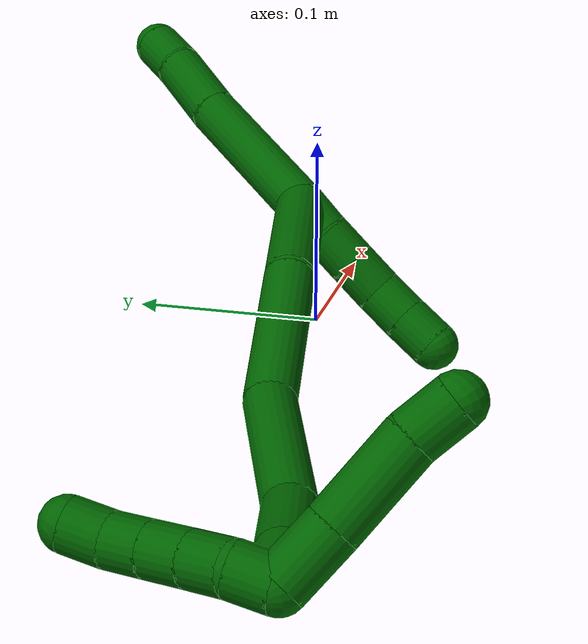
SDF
<sdf version="1.7">
 <world name="default">
  <model name="photoneo_s_sensor">
   <static>1</static>
   <pose>0 0 2 1.57079 1.57079 3.14159</pose>
   <link name="link">
    <inertial><mass>0.1</mass></inertial>
    <sensor name="sensor" type="depth">
     <update_rate>30</update_rate>
     <camera>
      <horizontal_fov>1.22</horizontal_fov>
      <image><width>1920</width><height>1200</height><format>B8G8R8</format></image>
      <clip><near>0.1</near><far>4</far></clip>
      <depth_camera><output>points</output></depth_camera>
     </camera>
     <plugin name="camera_plugin" filename="libgazebo_ros_depth_camera.so">
      <baseline>0.2</baseline>
      <alwaysOn>1</alwaysOn>
      <updateRate>0.0</updateRate>
      <cameraName>camera_ir</cameraName>
      <imageTopicName>/camera/color/image_raw</imageTopicName>
      <cameraInfoTopicName>/camera/color/camera_info</cameraInfoTopicName>
      <depthImageTopicName>/camera/depth/image_raw</depthImageTopicName>
      <depthImageCameraInfoTopicName>/camera/depth/camera_info</depthImageCameraInfoTopicName>
      <pointCloudTopicName>/camera/depth/points</pointCloudTopicName>
      <frameName>fr_optical</frameName>
      <pointCloudCutoff>0.1</pointCloudCutoff>
      <pointCloudCutoffMax>2.0</pointCloudCutoffMax>
      <distortionK1>0</distortionK1>
      <distortionK2>0</distortionK2>
      <distortionK3>0</distortionK3>
      <distortionT1>0</distortionT1>
      <distortionT2>0</distortionT2>
      <CxPrime>0</CxPrime>
      <Cx>0</Cx>
      <Cy>0</Cy>
      <focalLength>0</focalLength>
      <hackBaseline>0</hackBaseline>
     </plugin>
    </sensor>
   </link>
  </model>
  <model name="bin">
   <static>1</static>
   <link name="bottom">
    <collision name="collision-bottom">
     <pose>0 0 -0.01 0 -0 0</pose>
     <geometry><box><size>0.8 0.6 0.02</size></box></geometry>
     <surface>
      <friction><ode><mu>100</mu><mu2>100</mu2></ode></friction>
      <contact><collide_bitmask>65535</collide_bitmask></contact>
     </surface>
    </collision>
   </link>
   <link name="west_wall">
    <collision name="collision-west_wall">
     <pose>-0.41 0 0.1 0 -0 0</pose>
     <geometry><box><size>0.02 0.6 0.2</size></box></geometry>
     <surface>
      <friction><ode><mu>100</mu><mu2>100</mu2></ode></friction>
      <contact><collide_bitmask>65535</collide_bitmask></contact>
     </surface>
    </collision>
   </link>
   <link name="east_wall">
    <collision name="collision-east_wall">
     <pose>0.41 0 0.1 0 -0 0</pose>
     <geometry><box><size>0.02 0.6 0.2</size></box></geometry>
     <surface>
      <friction><ode><mu>100</mu><mu2>100</mu2></ode></friction>
      <contact><collide_bitmask>65535</collide_bitmask></contact>
     </surface>
    </collision>
   </link>
   <link name="south_wall">
    <collision name="collision-south_wall">
     <pose>0 -0.31 0.1 0 -0 0</pose>
     <geometry><box><size>0.8 0.02 0.2</size></box></geometry>
     <surface>
      <friction><ode><mu>100</mu><mu2>100</mu2></ode></friction>
      <contact><collide_bitmask>65535</collide_bitmask></contact>
     </surface>
    </collision>
   </link>
   <link name="north_wall">
    <collision name="collision-north_wall">
     <pose>0 0.31 0.1 0 -0 0</pose>
     <geometry><box><size>0.8 0.02 0.2</size></box></geometry>
     <surface>
      <friction><ode><mu>100</mu><mu2>100</mu2></ode></friction>
      <contact><collide_bitmask>65535</collide_bitmask></contact>
     </surface>
    </collision>
   </link>
  </model>
  <model name="6">
   <static>0</static>
   <link name="6">
    <collision name="collision-cylinder-e_1_2_8">
     <pose>0.036665 -0.018531 -0.006592 1.91257 1.07843 1.4066</pose>
     <geometry><cylinder><radius>0.0125</radius><length>0.083215</length></cylinder></geometry>
     <surface>
      <friction><ode><mu>1.16</mu><mu2>1.16</mu2><slip1>0</slip1><slip2>0</slip2></ode></friction>
      <contact><ode><kp>1e+06</kp><kd>1</kd><max_vel>0</max_vel><min_depth>0.001</min_depth></ode></contact>
     </surface>
    </collision>
    <visual name="visual-cylinder-e_1_2_8">
     <pose>0.036665 -0.018531 -0.006592 1.91257 1.07843 1.4066</pose>
     <geometry><cylinder><radius>0.0125</radius><length>0.083215</length></cylinder></geometry>
     <material><ambient>0 0.392157 0.003922 1</ambient></material>
    </visual>
    <collision name="collision-cylinder-e_2_8_9">
     <pose>0.090872 -0.046047 -0.017977 2.06087 1.04482 1.52971</pose>
     <geometry><cylinder><radius>0.0125</radius><length>0.040566</length></cylinder></geometry>
     <surface>
      <friction><ode><mu>1.16</mu><mu2>1.16</mu2><slip1>0</slip1><slip2>0</slip2></ode></friction>
      <contact><ode><kp>1e+06</kp><kd>1</kd><max_vel>0</max_vel><min_depth>0.001</min_depth></ode></contact>
     </surface>
    </collision>
    <visual name="visual-cylinder-e_2_8_9">
     <pose>0.090872 -0.046047 -0.017977 2.06087 1.04482 1.52971</pose>
     <geometry><cylinder><radius>0.0125</radius><length>0.040566</length></cylinder></geometry>
     <material><ambient>0 0.392157 0.003922 1</ambient></material>
    </visual>
    <collision name="collision-cylinder-e_3_9_6">
     <pose>0.120449 -0.058986 -0.02614 2.27652 1.16324 1.91718</pose>
     <geometry><cylinder><radius>0.0125</radius><length>0.026218</length></cylinder></geometry>
     <surface>
      <friction><ode><mu>1.16</mu><mu2>1.16</mu2><slip1>0</slip1><slip2>0</slip2></ode></friction>
      <contact><ode><kp>1e+06</kp><kd>1</kd><max_vel>0</max_vel><min_depth>0.001</min_depth></ode></contact>
     </surface>
    </collision>
    <visual name="visual-cylinder-e_3_9_6">
     <pose>0.120449 -0.058986 -0.02614 2.27652 1.16324 1.91718</pose>
     <geometry><cylinder><radius>0.0125</radius><length>0.026218</length></cylinder></geometry>
     <material><ambient>0 0.392157 0.003922 1</ambient></material>
    </visual>
    <collision name="collision-cylinder-e_1_2_10">
     <pose>-0.006757 0.007341 -0.000672 -1.66207 -0.741978 0.805828</pose>
     <geometry><cylinder><radius>0.0125</radius><length>0.02</length></cylinder></geometry>
     <surface>
      <friction><ode><mu>1.16</mu><mu2>1.16</mu2><slip1>0</slip1><slip2>0</slip2></ode></friction>
      <contact><ode><kp>1e+06</kp><kd>1</kd><max_vel>0</max_vel><min_depth>0.001</min_depth></ode></contact>
     </surface>
    </collision>
    <visual name="visual-cylinder-e_1_2_10">
     <pose>-0.006757 0.007341 -0.000672 -1.66207 -0.741978 0.805828</pose>
     <geometry><cylinder><radius>0.0125</radius><length>0.02</length></cylinder></geometry>
     <material><ambient>0 0.392157 0.003922 1</ambient></material>
    </visual>
    <collision name="collision-cylinder-e_2_10_11">
     <pose>-0.019438 0.022484 -0.003355 -1.82307 -0.633864 0.800779</pose>
     <geometry><cylinder><radius>0.0125</radius><length>0.02</length></cylinder></geometry>
     <surface>
      <friction><ode><mu>1.16</mu><mu2>1.16</mu2><slip1>0</slip1><slip2>0</slip2></ode></friction>
      <contact><ode><kp>1e+06</kp><kd>1</kd><max_vel>0</max_vel><min_depth>0.001</min_depth></ode></contact>
     </surface>
    </collision>
    <visual name="visual-cylinder-e_2_10_11">
     <pose>-0.019438 0.022484 -0.003355 -1.82307 -0.633864 0.800779</pose>
     <geometry><cylinder><radius>0.0125</radius><length>0.02</length></cylinder></geometry>
     <material><ambient>0 0.392157 0.003922 1</ambient></material>
    </visual>
    <collision name="collision-cylinder-e_3_11_12">
     <pose>-0.031153 0.038143 -0.007537 -1.8404 -0.617816 0.794006</pose>
     <geometry><cylinder><radius>0.0125</radius><length>0.02</length></cylinder></geometry>
     <surface>
      <friction><ode><mu>1.16</mu><mu2>1.16</mu2><slip1>0</slip1><slip2>0</slip2></ode></friction>
      <contact><ode><kp>1e+06</kp><kd>1</kd><max_vel>0</max_vel><min_depth>0.001</min_depth></ode></contact>
     </surface>
    </collision>
    <visual name="visual-cylinder-e_3_11_12">
     <pose>-0.031153 0.038143 -0.007537 -1.8404 -0.617816 0.794006</pose>
     <geometry><cylinder><radius>0.0125</radius><length>0.02</length></cylinder></geometry>
     <material><ambient>0 0.392157 0.003922 1</ambient></material>
    </visual>
    <collision name="collision-cylinder-e_4_12_13">
     <pose>-0.044367 0.052631 -0.010681 -1.71645 -0.836339 0.950079</pose>
     <geometry><cylinder><radius>0.0125</radius><length>0.02</length></cylinder></geometry>
     <surface>
      <friction><ode><mu>1.16</mu><mu2>1.16</mu2><slip1>0</slip1><slip2>0</slip2></ode></friction>
      <contact><ode><kp>1e+06</kp><kd>1</kd><max_vel>0</max_vel><min_depth>0.001</min_depth></ode></contact>
     </surface>
    </collision>
    <visual name="visual-cylinder-e_4_12_13">
     <pose>-0.044367 0.052631 -0.010681 -1.71645 -0.836339 0.950079</pose>
     <geometry><cylinder><radius>0.0125</radius><length>0.02</length></cylinder></geometry>
     <material><ambient>0 0.392157 0.003922 1</ambient></material>
    </visual>
    <collision name="collision-cylinder-e_5_13_5">
     <pose>-0.059423 0.065639 -0.012684 -1.73094 -0.868528 0.997557</pose>
     <geometry><cylinder><radius>0.0125</radius><length>0.02</length></cylinder></geometry>
     <surface>
      <friction><ode><mu>1.16</mu><mu2>1.16</mu2><slip1>0</slip1><slip2>0</slip2></ode></friction>
      <contact><ode><kp>1e+06</kp><kd>1</kd><max_vel>0</max_vel><min_depth>0.001</min_depth></ode></contact>
     </surface>
    </collision>
    <visual name="visual-cylinder-e_5_13_5">
     <pose>-0.059423 0.065639 -0.012684 -1.73094 -0.868528 0.997557</pose>
     <geometry><cylinder><radius>0.0125</radius><length>0.02</length></cylinder></geometry>
     <material><ambient>0 0.392157 0.003922 1</ambient></material>
    </visual>
    <collision name="collision-cylinder-e_1_2_14">
     <pose>-0.024844 0.003839 0.028201 -0.135309 -0.717642 0.050815</pose>
     <geometry><cylinder><radius>0.0125</radius><length>0.075559</length></cylinder></geometry>
     <surface>
      <friction><ode><mu>1.16</mu><mu2>1.16</mu2><slip1>0</slip1><slip2>0</slip2></ode></friction>
      <contact><ode><kp>1e+06</kp><kd>1</kd><max_vel>0</max_vel><min_depth>0.001</min_depth></ode></contact>
     </surface>
    </collision>
    <visual name="visual-cylinder-e_1_2_14">
     <pose>-0.024844 0.003839 0.028201 -0.135309 -0.717642 0.050815</pose>
     <geometry><cylinder><radius>0.0125</radius><length>0.075559</length></cylinder></geometry>
     <material><ambient>0 0.392157 0.003922 1</ambient></material>
    </visual>
    <collision name="collision-cylinder-e_2_14_15">
     <pose>-0.072092 0.021463 0.087009 -0.423161 -0.588543 0.130013</pose>
     <geometry><cylinder><radius>0.0125</radius><length>0.080714</length></cylinder></geometry>
     <surface>
      <friction><ode><mu>1.16</mu><mu2>1.16</mu2><slip1>0</slip1><slip2>0</slip2></ode></friction>
      <contact><ode><kp>1e+06</kp><kd>1</kd><max_vel>0</max_vel><min_depth>0.001</min_depth></ode></contact>
     </surface>
    </collision>
    <visual name="visual-cylinder-e_2_14_15">
     <pose>-0.072092 0.021463 0.087009 -0.423161 -0.588543 0.130013</pose>
     <geometry><cylinder><radius>0.0125</radius><length>0.080714</length></cylinder></geometry>
     <material><ambient>0 0.392157 0.003922 1</ambient></material>
    </visual>
    <collision name="collision-cylinder-e_3_15_16">
     <pose>-0.123504 0.042468 0.140247 -0.308843 -0.884599 0.147173</pose>
     <geometry><cylinder><radius>0.0125</radius><length>0.074988</length></cylinder></geometry>
     <surface>
      <friction><ode><mu>1.16</mu><mu2>1.16</mu2><slip1>0</slip1><slip2>0</slip2></ode></friction>
      <contact><ode><kp>1e+06</kp><kd>1</kd><max_vel>0</max_vel><min_depth>0.001</min_depth></ode></contact>
     </surface>
    </collision>
    <visual name="visual-cylinder-e_3_15_16">
     <pose>-0.123504 0.042468 0.140247 -0.308843 -0.884599 0.147173</pose>
     <geometry><cylinder><radius>0.0125</radius><length>0.074988</length></cylinder></geometry>
     <material><ambient>0 0.392157 0.003922 1</ambient></material>
    </visual>
    <collision name="collision-cylinder-e_4_16_17">
     <pose>-0.167055 0.048081 0.178069 0.105446 -0.76087 -0.042203</pose>
     <geometry><cylinder><radius>0.0125</radius><length>0.042181</length></cylinder></geometry>
     <surface>
      <friction><ode><mu>1.16</mu><mu2>1.16</mu2><slip1>0</slip1><slip2>0</slip2></ode></friction>
      <contact><ode><kp>1e+06</kp><kd>1</kd><max_vel>0</max_vel><min_depth>0.001</min_depth></ode></contact>
     </surface>
    </collision>
    <visual name="visual-cylinder-e_4_16_17">
     <pose>-0.167055 0.048081 0.178069 0.105446 -0.76087 -0.042203</pose>
     <geometry><cylinder><radius>0.0125</radius><length>0.042181</length></cylinder></geometry>
     <material><ambient>0 0.392157 0.003922 1</ambient></material>
    </visual>
    <collision name="collision-cylinder-e_5_17_1">
     <pose>-0.190785 0.045345 0.20278 0.117935 -0.76404 -0.047427</pose>
     <geometry><cylinder><radius>0.0125</radius><length>0.026559</length></cylinder></geometry>
     <surface>
      <friction><ode><mu>1.16</mu><mu2>1.16</mu2><slip1>0</slip1><slip2>0</slip2></ode></friction>
      <contact><ode><kp>1e+06</kp><kd>1</kd><max_vel>0</max_vel><min_depth>0.001</min_depth></ode></contact>
     </surface>
    </collision>
    <visual name="visual-cylinder-e_5_17_1">
     <pose>-0.190785 0.045345 0.20278 0.117935 -0.76404 -0.047427</pose>
     <geometry><cylinder><radius>0.0125</radius><length>0.026559</length></cylinder></geometry>
     <material><ambient>0 0.392157 0.003922 1</ambient></material>
    </visual>
    <collision name="collision-cylinder-e_1_1_18">
     <pose>-0.191108 0.041422 0.215993 0.648169 1.08941 0.401556</pose>
     <geometry><cylinder><radius>0.0125</radius><length>0.02</length></cylinder></geometry>
     <surface>
      <friction><ode><mu>1.16</mu><mu2>1.16</mu2><slip1>0</slip1><slip2>0</slip2></ode></friction>
      <contact><ode><kp>1e+06</kp><kd>1</kd><max_vel>0</max_vel><min_depth>0.001</min_depth></ode></contact>
     </surface>
    </collision>
    <visual name="visual-cylinder-e_1_1_18">
     <pose>-0.191108 0.041422 0.215993 0.648169 1.08941 0.401556</pose>
     <geometry><cylinder><radius>0.0125</radius><length>0.02</length></cylinder></geometry>
     <material><ambient>0 0.392157 0.003922 1</ambient></material>
    </visual>
    <collision name="collision-cylinder-e_2_18_19">
     <pose>-0.172483 0.038428 0.221842 0.091716 1.35236 0.073608</pose>
     <geometry><cylinder><radius>0.0125</radius><length>0.02</length></cylinder></geometry>
     <surface>
      <friction><ode><mu>1.16</mu><mu2>1.16</mu2><slip1>0</slip1><slip2>0</slip2></ode></friction>
      <contact><ode><kp>1e+06</kp><kd>1</kd><max_vel>0</max_vel><min_depth>0.001</min_depth></ode></contact>
     </surface>
    </collision>
    <visual name="visual-cylinder-e_2_18_19">
     <pose>-0.172483 0.038428 0.221842 0.091716 1.35236 0.073608</pose>
     <geometry><cylinder><radius>0.0125</radius><length>0.02</length></cylinder></geometry>
     <material><ambient>0 0.392157 0.003922 1</ambient></material>
    </visual>
    <collision name="collision-cylinder-e_3_19_20">
     <pose>-0.153076 0.037748 0.226599 0.183189 1.30326 0.139896</pose>
     <geometry><cylinder><radius>0.0125</radius><length>0.02</length></cylinder></geometry>
     <surface>
      <friction><ode><mu>1.16</mu><mu2>1.16</mu2><slip1>0</slip1><slip2>0</slip2></ode></friction>
      <contact><ode><kp>1e+06</kp><kd>1</kd><max_vel>0</max_vel><min_depth>0.001</min_depth></ode></contact>
     </surface>
    </collision>
    <visual name="visual-cylinder-e_3_19_20">
     <pose>-0.153076 0.037748 0.226599 0.183189 1.30326 0.139896</pose>
     <geometry><cylinder><radius>0.0125</radius><length>0.02</length></cylinder></geometry>
     <material><ambient>0 0.392157 0.003922 1</ambient></material>
    </visual>
    <collision name="collision-cylinder-e_4_20_21">
     <pose>-0.133798 0.036718 0.231824 0.205778 1.29921 0.156539</pose>
     <geometry><cylinder><radius>0.0125</radius><length>0.02</length></cylinder></geometry>
     <surface>
      <friction><ode><mu>1.16</mu><mu2>1.16</mu2><slip1>0</slip1><slip2>0</slip2></ode></friction>
      <contact><ode><kp>1e+06</kp><kd>1</kd><max_vel>0</max_vel><min_depth>0.001</min_depth></ode></contact>
     </surface>
    </collision>
    <visual name="visual-cylinder-e_4_20_21">
     <pose>-0.133798 0.036718 0.231824 0.205778 1.29921 0.156539</pose>
     <geometry><cylinder><radius>0.0125</radius><length>0.02</length></cylinder></geometry>
     <material><ambient>0 0.392157 0.003922 1</ambient></material>
    </visual>
    <collision name="collision-cylinder-e_5_21_4">
     <pose>-0.115472 0.033073 0.238302 0.677275 1.05382 0.404212</pose>
     <geometry><cylinder><radius>0.0125</radius><length>0.02</length></cylinder></geometry>
     <surface>
      <friction><ode><mu>1.16</mu><mu2>1.16</mu2><slip1>0</slip1><slip2>0</slip2></ode></friction>
      <contact><ode><kp>1e+06</kp><kd>1</kd><max_vel>0</max_vel><min_depth>0.001</min_depth></ode></contact>
     </surface>
    </collision>
    <visual name="visual-cylinder-e_5_21_4">
     <pose>-0.115472 0.033073 0.238302 0.677275 1.05382 0.404212</pose>
     <geometry><cylinder><radius>0.0125</radius><length>0.02</length></cylinder></geometry>
     <material><ambient>0 0.392157 0.003922 1</ambient></material>
    </visual>
    <collision name="collision-cylinder-e_1_1_22">
     <pose>-0.203882 0.036678 0.199714 2.60195 -0.260454 -0.884537</pose>
     <geometry><cylinder><radius>0.0125</radius><length>0.030369</length></cylinder></geometry>
     <surface>
      <friction><ode><mu>1.16</mu><mu2>1.16</mu2><slip1>0</slip1><slip2>0</slip2></ode></friction>
      <contact><ode><kp>1e+06</kp><kd>1</kd><max_vel>0</max_vel><min_depth>0.001</min_depth></ode></contact>
     </surface>
    </collision>
    <visual name="visual-cylinder-e_1_1_22">
     <pose>-0.203882 0.036678 0.199714 2.60195 -0.260454 -0.884537</pose>
     <geometry><cylinder><radius>0.0125</radius><length>0.030369</length></cylinder></geometry>
     <material><ambient>0 0.392157 0.003922 1</ambient></material>
    </visual>
    <collision name="collision-cylinder-e_2_22_23">
     <pose>-0.214322 0.016465 0.168916 2.5336 -0.286202 -0.861091</pose>
     <geometry><cylinder><radius>0.0125</radius><length>0.046254</length></cylinder></geometry>
     <surface>
      <friction><ode><mu>1.16</mu><mu2>1.16</mu2><slip1>0</slip1><slip2>0</slip2></ode></friction>
      <contact><ode><kp>1e+06</kp><kd>1</kd><max_vel>0</max_vel><min_depth>0.001</min_depth></ode></contact>
     </surface>
    </collision>
    <visual name="visual-cylinder-e_2_22_23">
     <pose>-0.214322 0.016465 0.168916 2.5336 -0.286202 -0.861091</pose>
     <geometry><cylinder><radius>0.0125</radius><length>0.046254</length></cylinder></geometry>
     <material><ambient>0 0.392157 0.003922 1</ambient></material>
    </visual>
    <collision name="collision-cylinder-e_3_23_3">
     <pose>-0.2263 -0.001646 0.141911 2.58783 -0.484964 -1.43244</pose>
     <geometry><cylinder><radius>0.0125</radius><length>0.023376</length></cylinder></geometry>
     <surface>
      <friction><ode><mu>1.16</mu><mu2>1.16</mu2><slip1>0</slip1><slip2>0</slip2></ode></friction>
      <contact><ode><kp>1e+06</kp><kd>1</kd><max_vel>0</max_vel><min_depth>0.001</min_depth></ode></contact>
     </surface>
    </collision>
    <visual name="visual-cylinder-e_3_23_3">
     <pose>-0.2263 -0.001646 0.141911 2.58783 -0.484964 -1.43244</pose>
     <geometry><cylinder><radius>0.0125</radius><length>0.023376</length></cylinder></geometry>
     <material><ambient>0 0.392157 0.003922 1</ambient></material>
    </visual>
    <collision name="collision-sphere-3">
     <pose>-0.231748 -0.007084 0.133116 0 -0 0</pose>
     <geometry><sphere><radius>0.0125</radius></sphere></geometry>
     <surface>
      <friction><ode><mu>1.16</mu><mu2>1.16</mu2><slip1>0</slip1><slip2>0</slip2></ode></friction>
      <contact><ode><kp>1e+06</kp><kd>1</kd><max_vel>0</max_vel><min_depth>0.001</min_depth></ode></contact>
     </surface>
    </collision>
    <visual name="visual-sphere-3">
     <pose>-0.231748 -0.007084 0.133116 0 -0 0</pose>
     <geometry><sphere><radius>0.0125</radius></sphere></geometry>
     <material><ambient>0 0.392157 0.003922 1</ambient></material>
    </visual>
    <collision name="collision-sphere-23">
     <pose>-0.220851 0.003792 0.150706 0 -0 0</pose>
     <geometry><sphere><radius>0.0125</radius></sphere></geometry>
     <surface>
      <friction><ode><mu>1.16</mu><mu2>1.16</mu2><slip1>0</slip1><slip2>0</slip2></ode></friction>
      <contact><ode><kp>1e+06</kp><kd>1</kd><max_vel>0</max_vel><min_depth>0.001</min_depth></ode></contact>
     </surface>
    </collision>
    <visual name="visual-sphere-23">
     <pose>-0.220851 0.003792 0.150706 0 -0 0</pose>
     <geometry><sphere><radius>0.0125</radius></sphere></geometry>
     <material><ambient>0 0.392157 0.003922 1</ambient></material>
    </visual>
    <collision name="collision-sphere-22">
     <pose>-0.207793 0.029139 0.187127 0 -0 0</pose>
     <geometry><sphere><radius>0.0125</radius></sphere></geometry>
     <surface>
      <friction><ode><mu>1.16</mu><mu2>1.16</mu2><slip1>0</slip1><slip2>0</slip2></ode></friction>
      <contact><ode><kp>1e+06</kp><kd>1</kd><max_vel>0</max_vel><min_depth>0.001</min_depth></ode></contact>
     </surface>
    </collision>
    <visual name="visual-sphere-22">
     <pose>-0.207793 0.029139 0.187127 0 -0 0</pose>
     <geometry><sphere><radius>0.0125</radius></sphere></geometry>
     <material><ambient>0 0.392157 0.003922 1</ambient></material>
    </visual>
    <collision name="collision-sphere-4">
     <pose>-0.106778 0.029975 0.242154 0 -0 0</pose>
     <geometry><sphere><radius>0.0125</radius></sphere></geometry>
     <surface>
      <friction><ode><mu>1.16</mu><mu2>1.16</mu2><slip1>0</slip1><slip2>0</slip2></ode></friction>
      <contact><ode><kp>1e+06</kp><kd>1</kd><max_vel>0</max_vel><min_depth>0.001</min_depth></ode></contact>
     </surface>
    </collision>
    <visual name="visual-sphere-4">
     <pose>-0.106778 0.029975 0.242154 0 -0 0</pose>
     <geometry><sphere><radius>0.0125</radius></sphere></geometry>
     <material><ambient>0 0.392157 0.003922 1</ambient></material>
    </visual>
    <collision name="collision-sphere-21">
     <pose>-0.124165 0.03617 0.23445 0 -0 0</pose>
     <geometry><sphere><radius>0.0125</radius></sphere></geometry>
     <surface>
      <friction><ode><mu>1.16</mu><mu2>1.16</mu2><slip1>0</slip1><slip2>0</slip2></ode></friction>
      <contact><ode><kp>1e+06</kp><kd>1</kd><max_vel>0</max_vel><min_depth>0.001</min_depth></ode></contact>
     </surface>
    </collision>
    <visual name="visual-sphere-21">
     <pose>-0.124165 0.03617 0.23445 0 -0 0</pose>
     <geometry><sphere><radius>0.0125</radius></sphere></geometry>
     <material><ambient>0 0.392157 0.003922 1</ambient></material>
    </visual>
    <collision name="collision-sphere-20">
     <pose>-0.143432 0.037266 0.229198 0 -0 0</pose>
     <geometry><sphere><radius>0.0125</radius></sphere></geometry>
     <surface>
      <friction><ode><mu>1.16</mu><mu2>1.16</mu2><slip1>0</slip1><slip2>0</slip2></ode></friction>
      <contact><ode><kp>1e+06</kp><kd>1</kd><max_vel>0</max_vel><min_depth>0.001</min_depth></ode></contact>
     </surface>
    </collision>
    <visual name="visual-sphere-20">
     <pose>-0.143432 0.037266 0.229198 0 -0 0</pose>
     <geometry><sphere><radius>0.0125</radius></sphere></geometry>
     <material><ambient>0 0.392157 0.003922 1</ambient></material>
    </visual>
    <collision name="collision-sphere-11">
     <pose>-0.02536 0.030286 -0.005366 0 -0 0</pose>
     <geometry><sphere><radius>0.0125</radius></sphere></geometry>
     <surface>
      <friction><ode><mu>1.16</mu><mu2>1.16</mu2><slip1>0</slip1><slip2>0</slip2></ode></friction>
      <contact><ode><kp>1e+06</kp><kd>1</kd><max_vel>0</max_vel><min_depth>0.001</min_depth></ode></contact>
     </surface>
    </collision>
    <visual name="visual-sphere-11">
     <pose>-0.02536 0.030286 -0.005366 0 -0 0</pose>
     <geometry><sphere><radius>0.0125</radius></sphere></geometry>
     <material><ambient>0 0.392157 0.003922 1</ambient></material>
    </visual>
    <collision name="collision-sphere-10">
     <pose>-0.013515 0.014681 -0.001344 0 -0 0</pose>
     <geometry><sphere><radius>0.0125</radius></sphere></geometry>
     <surface>
      <friction><ode><mu>1.16</mu><mu2>1.16</mu2><slip1>0</slip1><slip2>0</slip2></ode></friction>
      <contact><ode><kp>1e+06</kp><kd>1</kd><max_vel>0</max_vel><min_depth>0.001</min_depth></ode></contact>
     </surface>
    </collision>
    <visual name="visual-sphere-10">
     <pose>-0.013515 0.014681 -0.001344 0 -0 0</pose>
     <geometry><sphere><radius>0.0125</radius></sphere></geometry>
     <material><ambient>0 0.392157 0.003922 1</ambient></material>
    </visual>
    <collision name="collision-sphere-6">
     <pose>0.132485 -0.062941 -0.029511 0 -0 0</pose>
     <geometry><sphere><radius>0.0125</radius></sphere></geometry>
     <surface>
      <friction><ode><mu>1.16</mu><mu2>1.16</mu2><slip1>0</slip1><slip2>0</slip2></ode></friction>
      <contact><ode><kp>1e+06</kp><kd>1</kd><max_vel>0</max_vel><min_depth>0.001</min_depth></ode></contact>
     </surface>
    </collision>
    <visual name="visual-sphere-6">
     <pose>0.132485 -0.062941 -0.029511 0 -0 0</pose>
     <geometry><sphere><radius>0.0125</radius></sphere></geometry>
     <material><ambient>0 0.392157 0.003922 1</ambient></material>
    </visual>
    <collision name="collision-sphere-9">
     <pose>0.108414 -0.055032 -0.02277 0 -0 0</pose>
     <geometry><sphere><radius>0.0125</radius></sphere></geometry>
     <surface>
      <friction><ode><mu>1.16</mu><mu2>1.16</mu2><slip1>0</slip1><slip2>0</slip2></ode></friction>
      <contact><ode><kp>1e+06</kp><kd>1</kd><max_vel>0</max_vel><min_depth>0.001</min_depth></ode></contact>
     </surface>
    </collision>
    <visual name="visual-sphere-9">
     <pose>0.108414 -0.055032 -0.02277 0 -0 0</pose>
     <geometry><sphere><radius>0.0125</radius></sphere></geometry>
     <material><ambient>0 0.392157 0.003922 1</ambient></material>
    </visual>
    <collision name="collision-sphere-2">
     <geometry><sphere><radius>0.0125</radius></sphere></geometry>
     <surface>
      <friction><ode><mu>1.16</mu><mu2>1.16</mu2><slip1>0</slip1><slip2>0</slip2></ode></friction>
      <contact><ode><kp>1e+06</kp><kd>1</kd><max_vel>0</max_vel><min_depth>0.001</min_depth></ode></contact>
     </surface>
    </collision>
    <visual name="visual-sphere-2">
     <geometry><sphere><radius>0.0125</radius></sphere></geometry>
     <material><ambient>0 0.392157 0.003922 1</ambient></material>
    </visual>
    <collision name="collision-sphere-19">
     <pose>-0.16272 0.038229 0.224 0 -0 0</pose>
     <geometry><sphere><radius>0.0125</radius></sphere></geometry>
     <surface>
      <friction><ode><mu>1.16</mu><mu2>1.16</mu2><slip1>0</slip1><slip2>0</slip2></ode></friction>
      <contact><ode><kp>1e+06</kp><kd>1</kd><max_vel>0</max_vel><min_depth>0.001</min_depth></ode></contact>
     </surface>
    </collision>
    <visual name="visual-sphere-19">
     <pose>-0.16272 0.038229 0.224 0 -0 0</pose>
     <geometry><sphere><radius>0.0125</radius></sphere></geometry>
     <material><ambient>0 0.392157 0.003922 1</ambient></material>
    </visual>
    <collision name="collision-sphere-8">
     <pose>0.073331 -0.037062 -0.013184 0 -0 0</pose>
     <geometry><sphere><radius>0.0125</radius></sphere></geometry>
     <surface>
      <friction><ode><mu>1.16</mu><mu2>1.16</mu2><slip1>0</slip1><slip2>0</slip2></ode></friction>
      <contact><ode><kp>1e+06</kp><kd>1</kd><max_vel>0</max_vel><min_depth>0.001</min_depth></ode></contact>
     </surface>
    </collision>
    <visual name="visual-sphere-8">
     <pose>0.073331 -0.037062 -0.013184 0 -0 0</pose>
     <geometry><sphere><radius>0.0125</radius></sphere></geometry>
     <material><ambient>0 0.392157 0.003922 1</ambient></material>
    </visual>
    <collision name="collision-sphere-12">
     <pose>-0.036945 0.046 -0.009708 0 -0 0</pose>
     <geometry><sphere><radius>0.0125</radius></sphere></geometry>
     <surface>
      <friction><ode><mu>1.16</mu><mu2>1.16</mu2><slip1>0</slip1><slip2>0</slip2></ode></friction>
      <contact><ode><kp>1e+06</kp><kd>1</kd><max_vel>0</max_vel><min_depth>0.001</min_depth></ode></contact>
     </surface>
    </collision>
    <visual name="visual-sphere-12">
     <pose>-0.036945 0.046 -0.009708 0 -0 0</pose>
     <geometry><sphere><radius>0.0125</radius></sphere></geometry>
     <material><ambient>0 0.392157 0.003922 1</ambient></material>
    </visual>
    <collision name="collision-sphere-13">
     <pose>-0.051789 0.059262 -0.011654 0 -0 0</pose>
     <geometry><sphere><radius>0.0125</radius></sphere></geometry>
     <surface>
      <friction><ode><mu>1.16</mu><mu2>1.16</mu2><slip1>0</slip1><slip2>0</slip2></ode></friction>
      <contact><ode><kp>1e+06</kp><kd>1</kd><max_vel>0</max_vel><min_depth>0.001</min_depth></ode></contact>
     </surface>
    </collision>
    <visual name="visual-sphere-13">
     <pose>-0.051789 0.059262 -0.011654 0 -0 0</pose>
     <geometry><sphere><radius>0.0125</radius></sphere></geometry>
     <material><ambient>0 0.392157 0.003922 1</ambient></material>
    </visual>
    <collision name="collision-sphere-5">
     <pose>-0.067057 0.072016 -0.013714 0 -0 0</pose>
     <geometry><sphere><radius>0.0125</radius></sphere></geometry>
     <surface>
      <friction><ode><mu>1.16</mu><mu2>1.16</mu2><slip1>0</slip1><slip2>0</slip2></ode></friction>
      <contact><ode><kp>1e+06</kp><kd>1</kd><max_vel>0</max_vel><min_depth>0.001</min_depth></ode></contact>
     </surface>
    </collision>
    <visual name="visual-sphere-5">
     <pose>-0.067057 0.072016 -0.013714 0 -0 0</pose>
     <geometry><sphere><radius>0.0125</radius></sphere></geometry>
     <material><ambient>0 0.392157 0.003922 1</ambient></material>
    </visual>
    <collision name="collision-sphere-14">
     <pose>-0.049688 0.007679 0.056402 0 -0 0</pose>
     <geometry><sphere><radius>0.0125</radius></sphere></geometry>
     <surface>
      <friction><ode><mu>1.16</mu><mu2>1.16</mu2><slip1>0</slip1><slip2>0</slip2></ode></friction>
      <contact><ode><kp>1e+06</kp><kd>1</kd><max_vel>0</max_vel><min_depth>0.001</min_depth></ode></contact>
     </surface>
    </collision>
    <visual name="visual-sphere-14">
     <pose>-0.049688 0.007679 0.056402 0 -0 0</pose>
     <geometry><sphere><radius>0.0125</radius></sphere></geometry>
     <material><ambient>0 0.392157 0.003922 1</ambient></material>
    </visual>
    <collision name="collision-sphere-15">
     <pose>-0.094496 0.035247 0.117615 0 -0 0</pose>
     <geometry><sphere><radius>0.0125</radius></sphere></geometry>
     <surface>
      <friction><ode><mu>1.16</mu><mu2>1.16</mu2><slip1>0</slip1><slip2>0</slip2></ode></friction>
      <contact><ode><kp>1e+06</kp><kd>1</kd><max_vel>0</max_vel><min_depth>0.001</min_depth></ode></contact>
     </surface>
    </collision>
    <visual name="visual-sphere-15">
     <pose>-0.094496 0.035247 0.117615 0 -0 0</pose>
     <geometry><sphere><radius>0.0125</radius></sphere></geometry>
     <material><ambient>0 0.392157 0.003922 1</ambient></material>
    </visual>
    <collision name="collision-sphere-16">
     <pose>-0.152512 0.049689 0.162879 0 -0 0</pose>
     <geometry><sphere><radius>0.0125</radius></sphere></geometry>
     <surface>
      <friction><ode><mu>1.16</mu><mu2>1.16</mu2><slip1>0</slip1><slip2>0</slip2></ode></friction>
      <contact><ode><kp>1e+06</kp><kd>1</kd><max_vel>0</max_vel><min_depth>0.001</min_depth></ode></contact>
     </surface>
    </collision>
    <visual name="visual-sphere-16">
     <pose>-0.152512 0.049689 0.162879 0 -0 0</pose>
     <geometry><sphere><radius>0.0125</radius></sphere></geometry>
     <material><ambient>0 0.392157 0.003922 1</ambient></material>
    </visual>
    <collision name="collision-sphere-17">
     <pose>-0.181598 0.046473 0.193258 0 -0 0</pose>
     <geometry><sphere><radius>0.0125</radius></sphere></geometry>
     <surface>
      <friction><ode><mu>1.16</mu><mu2>1.16</mu2><slip1>0</slip1><slip2>0</slip2></ode></friction>
      <contact><ode><kp>1e+06</kp><kd>1</kd><max_vel>0</max_vel><min_depth>0.001</min_depth></ode></contact>
     </surface>
    </collision>
    <visual name="visual-sphere-17">
     <pose>-0.181598 0.046473 0.193258 0 -0 0</pose>
     <geometry><sphere><radius>0.0125</radius></sphere></geometry>
     <material><ambient>0 0.392157 0.003922 1</ambient></material>
    </visual>
    <collision name="collision-sphere-1">
     <pose>-0.199972 0.044217 0.212302 0 -0 0</pose>
     <geometry><sphere><radius>0.0125</radius></sphere></geometry>
     <surface>
      <friction><ode><mu>1.16</mu><mu2>1.16</mu2><slip1>0</slip1><slip2>0</slip2></ode></friction>
      <contact><ode><kp>1e+06</kp><kd>1</kd><max_vel>0</max_vel><min_depth>0.001</min_depth></ode></contact>
     </surface>
    </collision>
    <visual name="visual-sphere-1">
     <pose>-0.199972 0.044217 0.212302 0 -0 0</pose>
     <geometry><sphere><radius>0.0125</radius></sphere></geometry>
     <material><ambient>0 0.392157 0.003922 1</ambient></material>
    </visual>
    <collision name="collision-sphere-18">
     <pose>-0.182245 0.038626 0.219684 0 -0 0</pose>
     <geometry><sphere><radius>0.0125</radius></sphere></geometry>
     <surface>
      <friction><ode><mu>1.16</mu><mu2>1.16</mu2><slip1>0</slip1><slip2>0</slip2></ode></friction>
      <contact><ode><kp>1e+06</kp><kd>1</kd><max_vel>0</max_vel><min_depth>0.001</min_depth></ode></contact>
     </surface>
    </collision>
    <visual name="visual-sphere-18">
     <pose>-0.182245 0.038626 0.219684 0 -0 0</pose>
     <geometry><sphere><radius>0.0125</radius></sphere></geometry>
     <material><ambient>0 0.392157 0.003922 1</ambient></material>
    </visual>
    <inertial>
     <pose>-0.078816 0.017056 0.093056 0 -0 0</pose>
     <mass>0.75</mass>
     <inertia>
      <ixx>0.000143</ixx>
      <ixy>0</ixy>
      <ixz>0</ixz>
      <iyy>0.000212</iyy>
      <iyz>0</iyz>
      <izz>5.1e-05</izz>
     </inertia>
    </inertial>
   </link>
   <pose>-0.042532 -0.001519 0.078867 -1.74365 0.07011 0.987597</pose>
  </model>
 </world>
</sdf>
